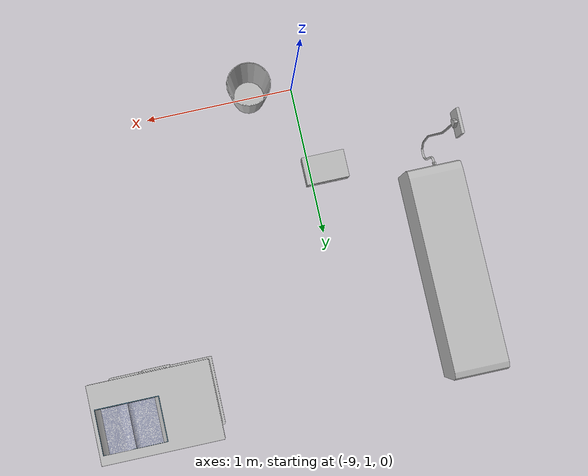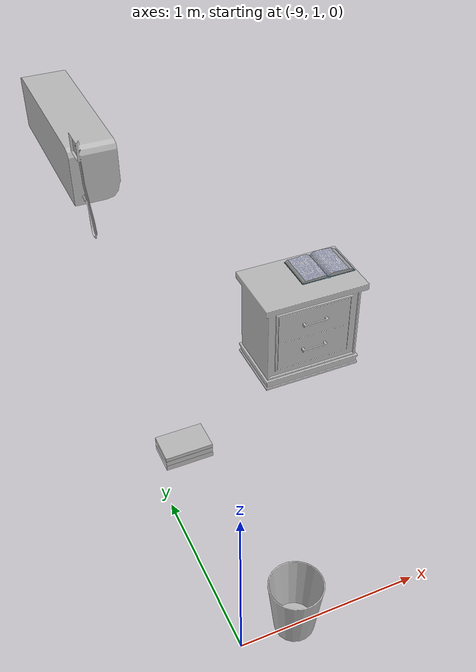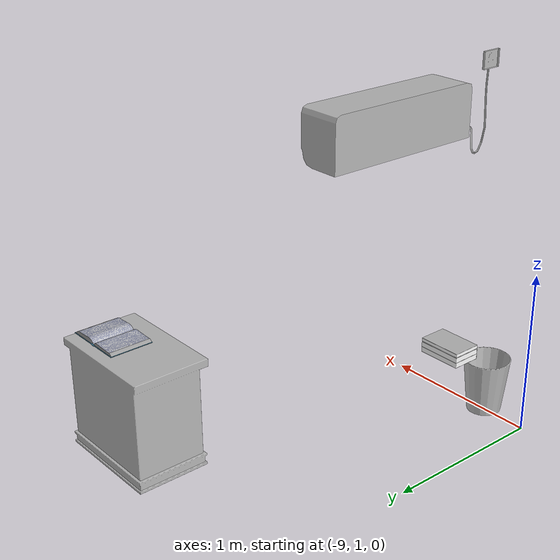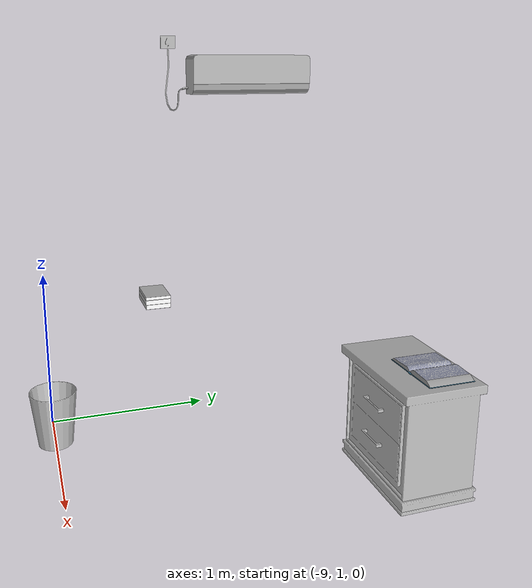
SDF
<sdf version="1.6">
 <world name="default">
  <model name="AirconditionerA_01_001">
   <static>1</static>
   <link name="aws_robomaker_residential_AirconditionerA_01::link">
    <inertial><mass>1</mass></inertial>
    <collision name="collision">
     <geometry>
      <mesh>
       <uri>model://aws_robomaker_residential_AirconditionerA_01/meshes/aws_AirconditionerA_01_collision.DAE</uri>
       <scale>1 1 1</scale>
      </mesh>
     </geometry>
    </collision>
    <visual name="visual">
     <geometry>
      <mesh>
       <uri>model://aws_robomaker_residential_AirconditionerA_01/meshes/aws_AirconditionerA_01_visual.DAE</uri>
      </mesh>
     </geometry>
     <meta><layer>1</layer></meta>
    </visual>
   </link>
   <static>1</static>
   <pose>-9.19941 2.41123 2.08454 0 -0 0</pose>
  </model>
  <model name="NightStand_01_001">
   <static>1</static>
   <link name="aws_robomaker_residential_NightStand_01::link">
    <inertial>
     <mass>13.6</mass>
     <inertia><ixx>0.6165</ixx><ixy>0</ixy><ixz>0</ixz><iyy>1.29664</iyy><iyz>0</iyz><izz>0.7706</izz></inertia>
    </inertial>
    <collision name="collision">
     <geometry>
      <mesh>
       <uri>model://aws_robomaker_residential_NightStand_01/meshes/aws_NightStand_01_collision.DAE</uri>
       <scale>1 1 1</scale>
      </mesh>
     </geometry>
    </collision>
    <visual name="visual">
     <geometry>
      <mesh><uri>model://aws_robomaker_residential_NightStand_01/meshes/aws_NightStand_01_visual.DAE</uri></mesh>
     </geometry>
     <meta><layer>1</layer></meta>
    </visual>
   </link>
   <static>1</static>
   <pose>-7.74638 2.86042 0.005258 -2e-06 0 0</pose>
  </model>
  <model name="Trash_01_002">
   <static>1</static>
   <link name="aws_robomaker_residential_Trash_01::link">
    <inertial>
     <mass>0.1</mass>
     <inertia><ixy>0</ixy><ixz>0</ixz><iyz>0</iyz><ixx>0.05288</ixx><iyy>0.05288</iyy><izz>0.09132</izz></inertia>
    </inertial>
    <collision name="collision">
     <geometry>
      <mesh>
       <uri>model://aws_robomaker_residential_Trash_01/meshes/aws_Trash_01_collision.DAE</uri>
       <scale>1 1 1</scale>
      </mesh>
     </geometry>
    </collision>
    <visual name="visual">
     <geometry>
      <mesh><uri>model://aws_robomaker_residential_Trash_01/meshes/aws_Trash_01_visual.DAE</uri></mesh>
     </geometry>
     <meta><layer>1</layer></meta>
    </visual>
   </link>
   <pose>-8.70415 1.00058 0.011 0 -0 0</pose>
  </model>
  <model name="book_1">
   <link name="cover">
    <pose>0 -0.000108 0.015405 0 -0 0</pose>
    <visual name="visual">
     <geometry><box><size>0.245 0.16 0.03</size></box></geometry>
     <material>
      <script>
       <uri>model://book_1/materials/scripts</uri>
       <uri>model://book_1/materials/textures</uri>
       <name>book_1</name>
      </script>
     </material>
    </visual>
    <collision name="collision"><geometry><box><size>0.245 0.16 0.03</size></box></geometry></collision>
   </link>
   <link name="page">
    <pose>0 0.000608 0.015405 0 -0 0</pose>
    <visual name="visual">
     <geometry><box><size>0.24502 0.15862 0.028</size></box></geometry>
     <material>
      <lighting>1</lighting>
      <ambient>1 1 1 1</ambient>
      <diffuse>1 1 1 1</diffuse>
      <specular>0.01 0.01 0.01 1</specular>
      <emissive>0 0 0 1</emissive>
      <shader type="vertex"><normal_map>__default__</normal_map></shader>
     </material>
    </visual>
    <collision name="collision"><geometry><box><size>0.245 0.16 0.03</size></box></geometry></collision>
   </link>
   <static>1</static>
   <pose>-9 1.7 0.75 0 -0 0</pose>
  </model>
  <model name="book_2">
   <link name="cover">
    <pose>0 -0.000108 0.015405 0 -0 0</pose>
    <visual name="visual">
     <geometry><box><size>0.245 0.16 0.03</size></box></geometry>
     <material>
      <script>
       <uri>model://book_2/materials/scripts</uri>
       <uri>model://book_2/materials/textures</uri>
       <name>book_2</name>
      </script>
     </material>
    </visual>
    <collision name="collision"><geometry><box><size>0.245 0.16 0.03</size></box></geometry></collision>
   </link>
   <link name="page">
    <pose>0 0.000608 0.015405 0 -0 0</pose>
    <visual name="visual">
     <geometry><box><size>0.24502 0.15862 0.028</size></box></geometry>
     <material>
      <lighting>1</lighting>
      <ambient>1 1 1 1</ambient>
      <diffuse>1 1 1 1</diffuse>
      <specular>0.01 0.01 0.01 1</specular>
      <emissive>0 0 0 1</emissive>
      <shader type="vertex"><normal_map>__default__</normal_map></shader>
     </material>
    </visual>
    <collision name="collision"><geometry><box><size>0.245 0.16 0.03</size></box></geometry></collision>
   </link>
   <static>1</static>
   <pose>-9 1.7 0.78 0 -0 0</pose>
  </model>
  <model name="book_3">
   <link name="cover">
    <pose>0 -0.000108 0.01 0 -0 0</pose>
    <visual name="visual">
     <geometry><box><size>0.245 0.16 0.02</size></box></geometry>
     <material>
      <script>
       <uri>model://book_3/materials/scripts</uri>
       <uri>model://book_3/materials/textures</uri>
       <name>book_3</name>
      </script>
     </material>
    </visual>
    <collision name="collision"><geometry><box><size>0.245 0.16 0.02</size></box></geometry></collision>
   </link>
   <link name="page">
    <pose>0 0.000608 0.01 0 -0 0</pose>
    <visual name="visual">
     <geometry><box><size>0.24502 0.15862 0.018</size></box></geometry>
     <material>
      <lighting>1</lighting>
      <ambient>1 1 1 1</ambient>
      <diffuse>1 1 1 1</diffuse>
      <specular>0.01 0.01 0.01 1</specular>
      <emissive>0 0 0 1</emissive>
      <shader type="vertex"><normal_map>__default__</normal_map></shader>
     </material>
    </visual>
    <collision name="collision"><geometry><box><size>0.245 0.16 0.018</size></box></geometry></collision>
   </link>
   <static>1</static>
   <pose>-9 1.7 0.812 0 -0 0</pose>
  </model>
  <model name="book_open">
   <link name="link_2">
    <visual name="visual">
     <geometry><mesh><uri>model://book_open/meshes/cover.dae</uri><scale>1 1 1</scale></mesh></geometry>
     <material>
      <lighting>1</lighting>
      <script><uri>file://media/materials/scripts/gazebo.material</uri><name>Gazebo/Grey</name></script>
      <ambient>0.1 0.3 0.5 1</ambient>
      <diffuse>0.2 0.4 0.5 1</diffuse>
      <specular>0.01 0.01 0.01 1</specular>
      <emissive>0 0 0 1</emissive>
     </material>
    </visual>
    <collision name="collision">
     <geometry><mesh><uri>model://book_open/meshes/cover.dae</uri><scale>1 1 1</scale></mesh></geometry>
    </collision>
   </link>
   <link name="link_3">
    <visual name="visual">
     <geometry><mesh><uri>model://book_open/meshes/open_page.dae</uri><scale>1 1 1</scale></mesh></geometry>
     <material>
      <script>
       <uri>model://book_open/materials/scripts</uri>
       <uri>model://book_open/materials/textures</uri>
       <name>book_page</name>
      </script>
     </material>
    </visual>
    <collision name="collision">
     <geometry><mesh><uri>model://book_open/meshes/open_page.dae</uri><scale>1 1 1</scale></mesh></geometry>
    </collision>
   </link>
   <link name="link_4">
    <visual name="visual">
     <geometry><mesh><uri>model://book_open/meshes/pages.dae</uri><scale>1 1 1</scale></mesh></geometry>
     <material>
      <lighting>1</lighting>
      <script><uri>file://media/materials/scripts/gazebo.material</uri><name>Gazebo/Grey</name></script>
      <ambient>1 1 1 1</ambient>
      <diffuse>1 1 1 1</diffuse>
      <specular>0.01 0.01 0.01 1</specular>
      <emissive>0 0 0 1</emissive>
     </material>
    </visual>
    <collision name="collision">
     <geometry><mesh><uri>model://book_open/meshes/pages.dae</uri><scale>1 1 1</scale></mesh></geometry>
    </collision>
   </link>
   <static>1</static>
   <pose>-7.6 2.9 0.7 0 -0 0</pose>
  </model>
 </world>
</sdf>
